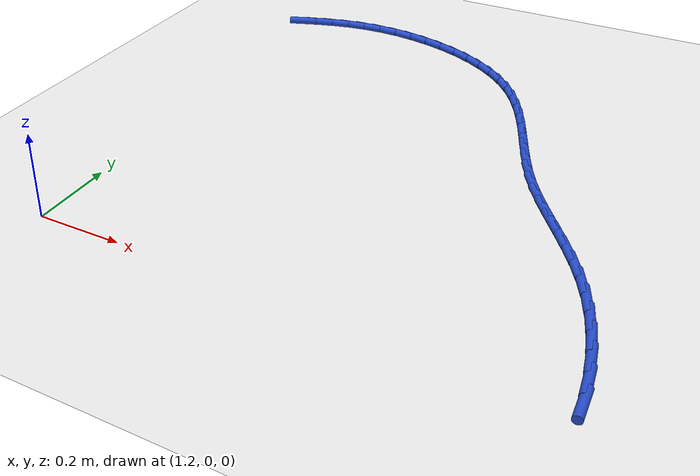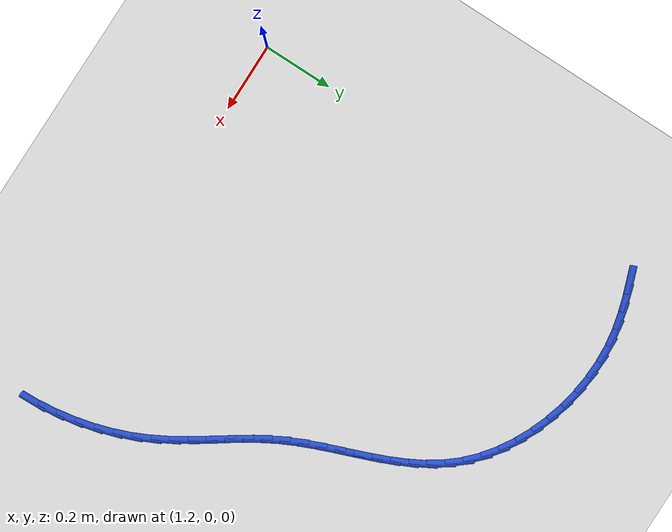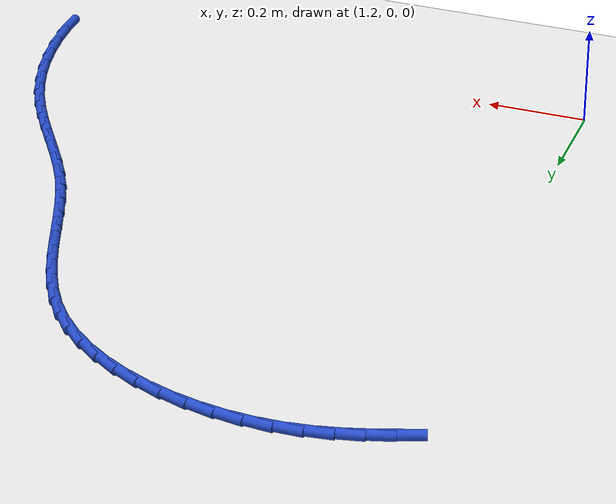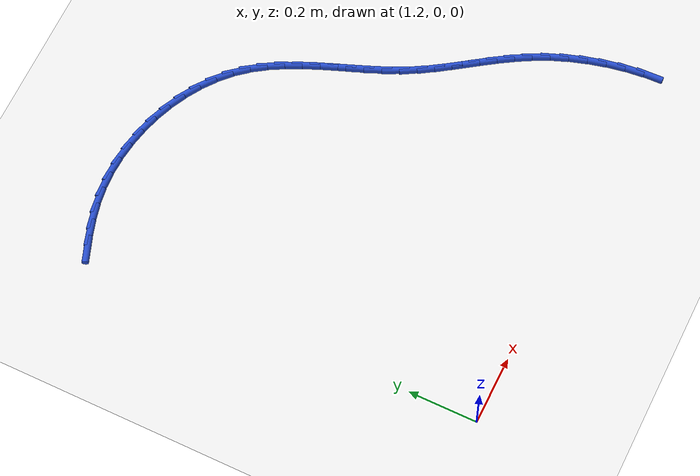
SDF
<sdf version="1.6">
 <world name="default">
  <model name="ground_plane">
   <static>1</static>
   <link name="link">
    <collision name="collision">
     <geometry><plane><normal>0 0 1</normal><size>100 100</size></plane></geometry>
     <surface><friction><ode><mu>100</mu><mu2>50</mu2></ode></friction></surface>
    </collision>
    <visual name="visual">
     <cast_shadows>0</cast_shadows>
     <geometry><plane><normal>0 0 1</normal><size>100 100</size></plane></geometry>
     <material>
      <script><uri>file://media/materials/scripts/gazebo.material</uri><name>Gazebo/WhiteGlow</name></script>
     </material>
    </visual>
   </link>
  </model>
  <model name="line">
   <link name="link_36">
    <pose>1.1959118696095608 1.171589928550213 0.01 0 1.57 0.3456431820549411</pose>
    <collision name="collision">
     <geometry><cylinder><radius>0.01</radius><length>0.08</length></cylinder></geometry>
    </collision>
    <visual name="visual">
     <material>
      <script><name>Gazebo/Blue</name><uri>file://media/materials/scripts/gazebo.material</uri></script>
     </material>
     <geometry><cylinder><radius>0.01</radius><length>0.08</length></cylinder></geometry>
    </visual>
   </link>
   <link name="link_37">
    <pose>1.2429761786291746 1.1885377371751737 0.01 0 1.57 0.2934512831283303</pose>
    <collision name="collision">
     <geometry><cylinder><radius>0.01</radius><length>0.08</length></cylinder></geometry>
    </collision>
    <visual name="visual">
     <material>
      <script><name>Gazebo/Blue</name><uri>file://media/materials/scripts/gazebo.material</uri></script>
     </material>
     <geometry><cylinder><radius>0.01</radius><length>0.08</length></cylinder></geometry>
    </visual>
   </link>
   <link name="link_38">
    <pose>1.2907577590739432 1.2029761504417427 0.01 0 1.57 0.22321090891839387</pose>
    <collision name="collision">
     <geometry><cylinder><radius>0.01</radius><length>0.08</length></cylinder></geometry>
    </collision>
    <visual name="visual">
     <material>
      <script><name>Gazebo/Blue</name><uri>file://media/materials/scripts/gazebo.material</uri></script>
     </material>
     <geometry><cylinder><radius>0.01</radius><length>0.08</length></cylinder></geometry>
    </visual>
   </link>
   <link name="link_39">
    <pose>1.339549750969166 1.2140516070687903 0.01 0 1.57 0.13618608619672748</pose>
    <collision name="collision">
     <geometry><cylinder><radius>0.01</radius><length>0.08</length></cylinder></geometry>
    </collision>
    <visual name="visual">
     <material>
      <script><name>Gazebo/Blue</name><uri>file://media/materials/scripts/gazebo.material</uri></script>
     </material>
     <geometry><cylinder><radius>0.01</radius><length>0.08</length></cylinder></geometry>
    </visual>
   </link>
   <link name="link_40">
    <pose>1.389640515573445 1.2209157605009378 0.01 0 1.57 0.04198628796460396</pose>
    <collision name="collision">
     <geometry><cylinder><radius>0.01</radius><length>0.08</length></cylinder></geometry>
    </collision>
    <visual name="visual">
     <material>
      <script><name>Gazebo/Blue</name><uri>file://media/materials/scripts/gazebo.material</uri></script>
     </material>
     <geometry><cylinder><radius>0.01</radius><length>0.08</length></cylinder></geometry>
    </visual>
   </link>
   <link name="link_41">
    <pose>1.4409949737881937 1.2230732114738059 0.01 0 1.57 -0.047471777325768155</pose>
    <collision name="collision">
     <geometry><cylinder><radius>0.01</radius><length>0.08</length></cylinder></geometry>
    </collision>
    <visual name="visual">
     <material>
      <script><name>Gazebo/Blue</name><uri>file://media/materials/scripts/gazebo.material</uri></script>
     </material>
     <geometry><cylinder><radius>0.01</radius><length>0.08</length></cylinder></geometry>
    </visual>
   </link>
   <link name="link_42">
    <pose>1.4930543796852804 1.2206000008193512 0.01 0 1.57 -0.13295337003043484</pose>
    <collision name="collision">
     <geometry><cylinder><radius>0.01</radius><length>0.08</length></cylinder></geometry>
    </collision>
    <visual name="visual">
     <material>
      <script><name>Gazebo/Blue</name><uri>file://media/materials/scripts/gazebo.material</uri></script>
     </material>
     <geometry><cylinder><radius>0.01</radius><length>0.08</length></cylinder></geometry>
    </visual>
   </link>
   <link name="link_43">
    <pose>1.5452122252929636 1.21362428866612 0.01 0 1.57 -0.2163121100112164</pose>
    <collision name="collision">
     <geometry><cylinder><radius>0.01</radius><length>0.08</length></cylinder></geometry>
    </collision>
    <visual name="visual">
     <material>
      <script><name>Gazebo/Blue</name><uri>file://media/materials/scripts/gazebo.material</uri></script>
     </material>
     <geometry><cylinder><radius>0.01</radius><length>0.08</length></cylinder></geometry>
    </visual>
   </link>
   <link name="link_44">
    <pose>1.5968620026395017 1.2022742351426583 0.01 0 1.57 -0.29934727198102073</pose>
    <collision name="collision">
     <geometry><cylinder><radius>0.01</radius><length>0.08</length></cylinder></geometry>
    </collision>
    <visual name="visual">
     <material>
      <script><name>Gazebo/Blue</name><uri>file://media/materials/scripts/gazebo.material</uri></script>
     </material>
     <geometry><cylinder><radius>0.01</radius><length>0.08</length></cylinder></geometry>
    </visual>
   </link>
   <link name="link_45">
    <pose>1.6473972037531537 1.1866780003775124 0.01 0 1.57 -0.3838328148589107</pose>
    <collision name="collision">
     <geometry><cylinder><radius>0.01</radius><length>0.08</length></cylinder></geometry>
    </collision>
    <visual name="visual">
     <material>
      <script><name>Gazebo/Blue</name><uri>file://media/materials/scripts/gazebo.material</uri></script>
     </material>
     <geometry><cylinder><radius>0.01</radius><length>0.08</length></cylinder></geometry>
    </visual>
   </link>
   <link name="link_46">
    <pose>1.6962113206621763 1.1669637444992278 0.01 0 1.57 -0.47154709653462734</pose>
    <collision name="collision">
     <geometry><cylinder><radius>0.01</radius><length>0.08</length></cylinder></geometry>
    </collision>
    <visual name="visual">
     <material>
      <script><name>Gazebo/Blue</name><uri>file://media/materials/scripts/gazebo.material</uri></script>
     </material>
     <geometry><cylinder><radius>0.01</radius><length>0.08</length></cylinder></geometry>
    </visual>
   </link>
   <link name="link_47">
    <pose>1.7426978453948279 1.1432596276363507 0.01 0 1.57 -0.5642844519139303</pose>
    <collision name="collision">
     <geometry><cylinder><radius>0.01</radius><length>0.08</length></cylinder></geometry>
    </collision>
    <visual name="visual">
     <material>
      <script><name>Gazebo/Blue</name><uri>file://media/materials/scripts/gazebo.material</uri></script>
     </material>
     <geometry><cylinder><radius>0.01</radius><length>0.08</length></cylinder></geometry>
    </visual>
   </link>
   <link name="link_48">
    <pose>1.7862502699793672 1.1156938099174278 0.01 0 1.57 -0.6638254572470048</pose>
    <collision name="collision">
     <geometry><cylinder><radius>0.01</radius><length>0.08</length></cylinder></geometry>
    </collision>
    <visual name="visual">
     <material>
      <script><name>Gazebo/Blue</name><uri>file://media/materials/scripts/gazebo.material</uri></script>
     </material>
     <geometry><cylinder><radius>0.01</radius><length>0.08</length></cylinder></geometry>
    </visual>
   </link>
   <link name="link_49">
    <pose>1.8262620864440522 1.0843944514710042 0.01 0 1.57 -0.7718343643236865</pose>
    <collision name="collision">
     <geometry><cylinder><radius>0.01</radius><length>0.08</length></cylinder></geometry>
    </collision>
    <visual name="visual">
     <material>
      <script><name>Gazebo/Blue</name><uri>file://media/materials/scripts/gazebo.material</uri></script>
     </material>
     <geometry><cylinder><radius>0.01</radius><length>0.08</length></cylinder></geometry>
    </visual>
   </link>
   <link name="link_50">
    <pose>1.8621267868171416 1.0494897124256266 0.01 0 1.57 -0.8867132381240912</pose>
    <collision name="collision">
     <geometry><cylinder><radius>0.01</radius><length>0.08</length></cylinder></geometry>
    </collision>
    <visual name="visual">
     <material>
      <script><name>Gazebo/Blue</name><uri>file://media/materials/scripts/gazebo.material</uri></script>
     </material>
     <geometry><cylinder><radius>0.01</radius><length>0.08</length></cylinder></geometry>
    </visual>
   </link>
   <link name="link_51">
    <pose>1.893386625401366 1.0111546345942737 0.01 0 1.57 -0.9900694901103938</pose>
    <collision name="collision">
     <geometry><cylinder><radius>0.01</radius><length>0.08</length></cylinder></geometry>
    </collision>
    <visual name="visual">
     <material>
      <script><name>Gazebo/Blue</name><uri>file://media/materials/scripts/gazebo.material</uri></script>
     </material>
     <geometry><cylinder><radius>0.01</radius><length>0.08</length></cylinder></geometry>
    </visual>
   </link>
   <link name="link_52">
    <pose>1.920490962531503 0.969850129704805 0.01 0 1.57 -1.0732001886889313</pose>
    <collision name="collision">
     <geometry><cylinder><radius>0.01</radius><length>0.08</length></cylinder></geometry>
    </collision>
    <visual name="visual">
     <material>
      <script><name>Gazebo/Blue</name><uri>file://media/materials/scripts/gazebo.material</uri></script>
     </material>
     <geometry><cylinder><radius>0.01</radius><length>0.08</length></cylinder></geometry>
    </visual>
   </link>
   <link name="link_53">
    <pose>1.9442310286467575 0.9261448481332657 0.01 0 1.57 -1.135667791047885</pose>
    <collision name="collision">
     <geometry><cylinder><radius>0.01</radius><length>0.08</length></cylinder></geometry>
    </collision>
    <visual name="visual">
     <material>
      <script><name>Gazebo/Blue</name><uri>file://media/materials/scripts/gazebo.material</uri></script>
     </material>
     <geometry><cylinder><radius>0.01</radius><length>0.08</length></cylinder></geometry>
    </visual>
   </link>
   <link name="link_54">
    <pose>1.9653986799708347 0.8806076374685458 0.01 0 1.57 -1.178064835925117</pose>
    <collision name="collision">
     <geometry><cylinder><radius>0.01</radius><length>0.08</length></cylinder></geometry>
    </collision>
    <visual name="visual">
     <material>
      <script><name>Gazebo/Blue</name><uri>file://media/materials/scripts/gazebo.material</uri></script>
     </material>
     <geometry><cylinder><radius>0.01</radius><length>0.08</length></cylinder></geometry>
    </visual>
   </link>
   <link name="link_55">
    <pose>1.9847857727274387 0.8338073452995366 0.01 0 1.57 -1.2012170917325466</pose>
    <collision name="collision">
     <geometry><cylinder><radius>0.01</radius><length>0.08</length></cylinder></geometry>
    </collision>
    <visual name="visual">
     <material>
      <script><name>Gazebo/Blue</name><uri>file://media/materials/scripts/gazebo.material</uri></script>
     </material>
     <geometry><cylinder><radius>0.01</radius><length>0.08</length></cylinder></geometry>
    </visual>
   </link>
   <link name="link_56">
    <pose>2.003184163140274 0.7863128192151276 0.01 0 1.57 -1.2057060780142181</pose>
    <collision name="collision">
     <geometry><cylinder><radius>0.01</radius><length>0.08</length></cylinder></geometry>
    </collision>
    <visual name="visual">
     <material>
      <script><name>Gazebo/Blue</name><uri>file://media/materials/scripts/gazebo.material</uri></script>
     </material>
     <geometry><cylinder><radius>0.01</radius><length>0.08</length></cylinder></geometry>
    </visual>
   </link>
   <link name="link_57">
    <pose>2.0213857074330446 0.7386929068042096 0.01 0 1.57 -1.1916433808760836</pose>
    <collision name="collision">
     <geometry><cylinder><radius>0.01</radius><length>0.08</length></cylinder></geometry>
    </collision>
    <visual name="visual">
     <material>
      <script><name>Gazebo/Blue</name><uri>file://media/materials/scripts/gazebo.material</uri></script>
     </material>
     <geometry><cylinder><radius>0.01</radius><length>0.08</length></cylinder></geometry>
    </visual>
   </link>
   <link name="link_58">
    <pose>2.040182261829454 0.691516455655672 0.01 0 1.57 -1.1586293924227349</pose>
    <collision name="collision">
     <geometry><cylinder><radius>0.01</radius><length>0.08</length></cylinder></geometry>
    </collision>
    <visual name="visual">
     <material>
      <script><name>Gazebo/Blue</name><uri>file://media/materials/scripts/gazebo.material</uri></script>
     </material>
     <geometry><cylinder><radius>0.01</radius><length>0.08</length></cylinder></geometry>
    </visual>
   </link>
   <link name="link_59">
    <pose>2.0603656825532077 0.6453523133584061 0.01 0 1.57 -1.10594872293071</pose>
    <collision name="collision">
     <geometry><cylinder><radius>0.01</radius><length>0.08</length></cylinder></geometry>
    </collision>
    <visual name="visual">
     <material>
      <script><name>Gazebo/Blue</name><uri>file://media/materials/scripts/gazebo.material</uri></script>
     </material>
     <geometry><cylinder><radius>0.01</radius><length>0.08</length></cylinder></geometry>
    </visual>
   </link>
   <link name="link_60">
    <pose>2.082725139466468 0.6007672345606511 0.01 0 1.57 -1.044432624830752</pose>
    <collision name="collision">
     <geometry><cylinder><radius>0.01</radius><length>0.08</length></cylinder></geometry>
    </collision>
    <visual name="visual">
     <material>
      <script><name>Gazebo/Blue</name><uri>file://media/materials/scripts/gazebo.material</uri></script>
     </material>
     <geometry><cylinder><radius>0.01</radius><length>0.08</length></cylinder></geometry>
    </visual>
   </link>
   <link name="link_61">
    <pose>2.1075915912603733 0.5579709822059038 0.01 0 1.57 -0.9991546788799175</pose>
    <collision name="collision">
     <geometry><cylinder><radius>0.01</radius><length>0.08</length></cylinder></geometry>
    </collision>
    <visual name="visual">
     <material>
      <script><name>Gazebo/Blue</name><uri>file://media/materials/scripts/gazebo.material</uri></script>
     </material>
     <geometry><cylinder><radius>0.01</radius><length>0.08</length></cylinder></geometry>
    </visual>
   </link>
   <link name="link_62">
    <pose>2.1343235674775496 0.5164157010008655 0.01 0 1.57 -0.9739570257803845</pose>
    <collision name="collision">
     <geometry><cylinder><radius>0.01</radius><length>0.08</length></cylinder></geometry>
    </collision>
    <visual name="visual">
     <material>
      <script><name>Gazebo/Blue</name><uri>file://media/materials/scripts/gazebo.material</uri></script>
     </material>
     <geometry><cylinder><radius>0.01</radius><length>0.08</length></cylinder></geometry>
    </visual>
   </link>
   <link name="link_63">
    <pose>2.16215542336667 0.47545679162746246 0.01 0 1.57 -0.9689448793260904</pose>
    <collision name="collision">
     <geometry><cylinder><radius>0.01</radius><length>0.08</length></cylinder></geometry>
    </collision>
    <visual name="visual">
     <material>
      <script><name>Gazebo/Blue</name><uri>file://media/materials/scripts/gazebo.material</uri></script>
     </material>
     <geometry><cylinder><radius>0.01</radius><length>0.08</length></cylinder></geometry>
    </visual>
   </link>
   <link name="link_64">
    <pose>2.1903215141764116 0.43444965476762065 0.01 0 1.57 -0.9838785386937565</pose>
    <collision name="collision">
     <geometry><cylinder><radius>0.01</radius><length>0.08</length></cylinder></geometry>
    </collision>
    <visual name="visual">
     <material>
      <script><name>Gazebo/Blue</name><uri>file://media/materials/scripts/gazebo.material</uri></script>
     </material>
     <geometry><cylinder><radius>0.01</radius><length>0.08</length></cylinder></geometry>
    </visual>
   </link>
   <link name="link_65">
    <pose>2.2180561951554507 0.39274969110326613 0.01 0 1.57 -1.0182472833251086</pose>
    <collision name="collision">
     <geometry><cylinder><radius>0.01</radius><length>0.08</length></cylinder></geometry>
    </collision>
    <visual name="visual">
     <material>
      <script><name>Gazebo/Blue</name><uri>file://media/materials/scripts/gazebo.material</uri></script>
     </material>
     <geometry><cylinder><radius>0.01</radius><length>0.08</length></cylinder></geometry>
    </visual>
   </link>
   <link name="link_66">
    <pose>2.2445938215524617 0.349712301316325 0.01 0 1.57 -1.0711264088432597</pose>
    <collision name="collision">
     <geometry><cylinder><radius>0.01</radius><length>0.08</length></cylinder></geometry>
    </collision>
    <visual name="visual">
     <material>
      <script><name>Gazebo/Blue</name><uri>file://media/materials/scripts/gazebo.material</uri></script>
     </material>
     <geometry><cylinder><radius>0.01</radius><length>0.08</length></cylinder></geometry>
    </visual>
   </link>
   <link name="link_67">
    <pose>2.2691687486161216 0.3046928860887228 0.01 0 1.57 -1.1397565086121426</pose>
    <collision name="collision">
     <geometry><cylinder><radius>0.01</radius><length>0.08</length></cylinder></geometry>
    </collision>
    <visual name="visual">
     <material>
      <script><name>Gazebo/Blue</name><uri>file://media/materials/scripts/gazebo.material</uri></script>
     </material>
     <geometry><cylinder><radius>0.01</radius><length>0.08</length></cylinder></geometry>
    </visual>
   </link>
   <link name="link_68">
    <pose>2.291051188936686 0.25710996632728134 0.01 0 1.57 -1.2108532033038288</pose>
    <collision name="collision">
     <geometry><cylinder><radius>0.01</radius><length>0.08</length></cylinder></geometry>
    </collision>
    <visual name="visual">
     <material>
      <script><name>Gazebo/Blue</name><uri>file://media/materials/scripts/gazebo.material</uri></script>
     </material>
     <geometry><cylinder><radius>0.01</radius><length>0.08</length></cylinder></geometry>
    </visual>
   </link>
   <link name="link_69">
    <pose>2.3098907099884003 0.20704984712295665 0.01 0 1.57 -1.278293907115685</pose>
    <collision name="collision">
     <geometry><cylinder><radius>0.01</radius><length>0.08</length></cylinder></geometry>
    </collision>
    <visual name="visual">
     <material>
      <script><name>Gazebo/Blue</name><uri>file://media/materials/scripts/gazebo.material</uri></script>
     </material>
     <geometry><cylinder><radius>0.01</radius><length>0.08</length></cylinder></geometry>
    </visual>
   </link>
   <link name="link_70">
    <pose>2.3255649253345454 0.15500026657294702 0.01 0 1.57 -1.343413978573037</pose>
    <collision name="collision">
     <geometry><cylinder><radius>0.01</radius><length>0.08</length></cylinder></geometry>
    </collision>
    <visual name="visual">
     <material>
      <script><name>Gazebo/Blue</name><uri>file://media/materials/scripts/gazebo.material</uri></script>
     </material>
     <geometry><cylinder><radius>0.01</radius><length>0.08</length></cylinder></geometry>
    </visual>
   </link>
   <link name="link_71">
    <pose>2.337954564886143 0.10145444852886909 0.01 0 1.57 -1.4075331948183472</pose>
    <collision name="collision">
     <geometry><cylinder><radius>0.01</radius><length>0.08</length></cylinder></geometry>
    </collision>
    <visual name="visual">
     <material>
      <script><name>Gazebo/Blue</name><uri>file://media/materials/scripts/gazebo.material</uri></script>
     </material>
     <geometry><cylinder><radius>0.01</radius><length>0.08</length></cylinder></geometry>
    </visual>
   </link>
   <link name="link_72">
    <pose>2.3469403585542103 0.04690561684234084 0.01 0 1.57 -1.4719043046339715</pose>
    <collision name="collision">
     <geometry><cylinder><radius>0.01</radius><length>0.08</length></cylinder></geometry>
    </collision>
    <visual name="visual">
     <material>
      <script><name>Gazebo/Blue</name><uri>file://media/materials/scripts/gazebo.material</uri></script>
     </material>
     <geometry><cylinder><radius>0.01</radius><length>0.08</length></cylinder></geometry>
    </visual>
   </link>
   <link name="link_73">
    <pose>2.3524030362497657 -0.00815300463502144 0.01 0 1.57 -1.5377573242510014</pose>
    <collision name="collision">
     <geometry><cylinder><radius>0.01</radius><length>0.08</length></cylinder></geometry>
    </collision>
    <visual name="visual">
     <material>
      <script><name>Gazebo/Blue</name><uri>file://media/materials/scripts/gazebo.material</uri></script>
     </material>
     <geometry><cylinder><radius>0.01</radius><length>0.08</length></cylinder></geometry>
    </visual>
   </link>
  </model>
 </world>
</sdf>
